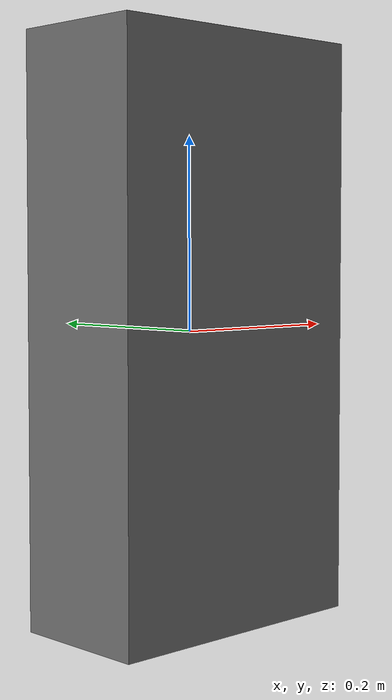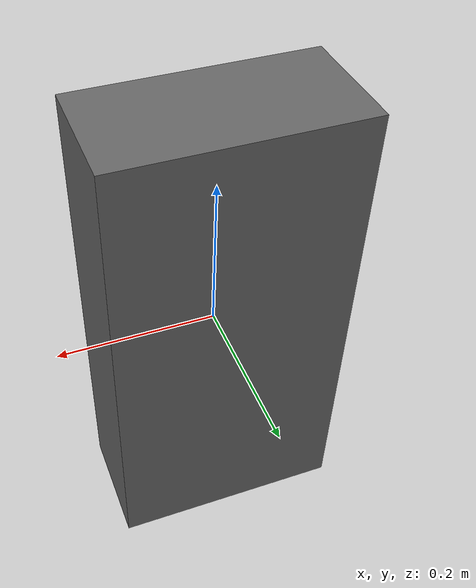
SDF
<?xml version="1.0"?>
<sdf version="1.7">
  <model name="pedestal_model">
    <link name="pedestal_base">
      <inertial>
        <mass>18.70</mass>
        <inertia>
          <ixx>0.79</ixx>
          <ixy>0</ixy>
          <ixz>0</ixz>
          <iyy>0.53</iyy>
          <iyz>0</iyz>
          <izz>1.2</izz>
        </inertia>
      </inertial>
      <visual name="pedestal">
        <pose>0.0 0.0 0 0 0 0</pose>
        <geometry>
          <box>
            <size>0.3 0.15 0.6</size>
          </box>
        </geometry>
        <material>
          <diffuse>0.4 0.4 0.4 1.0</diffuse>
        </material>
      </visual>
      <collision name="pedestal">
        <pose>0.0 0.0 0 0 0 0</pose>
        <geometry>
          <box>
            <size>0.3 0.15 0.6</size>
          </box>
        </geometry>
      </collision>
    </link>
  </model>
</sdf>
